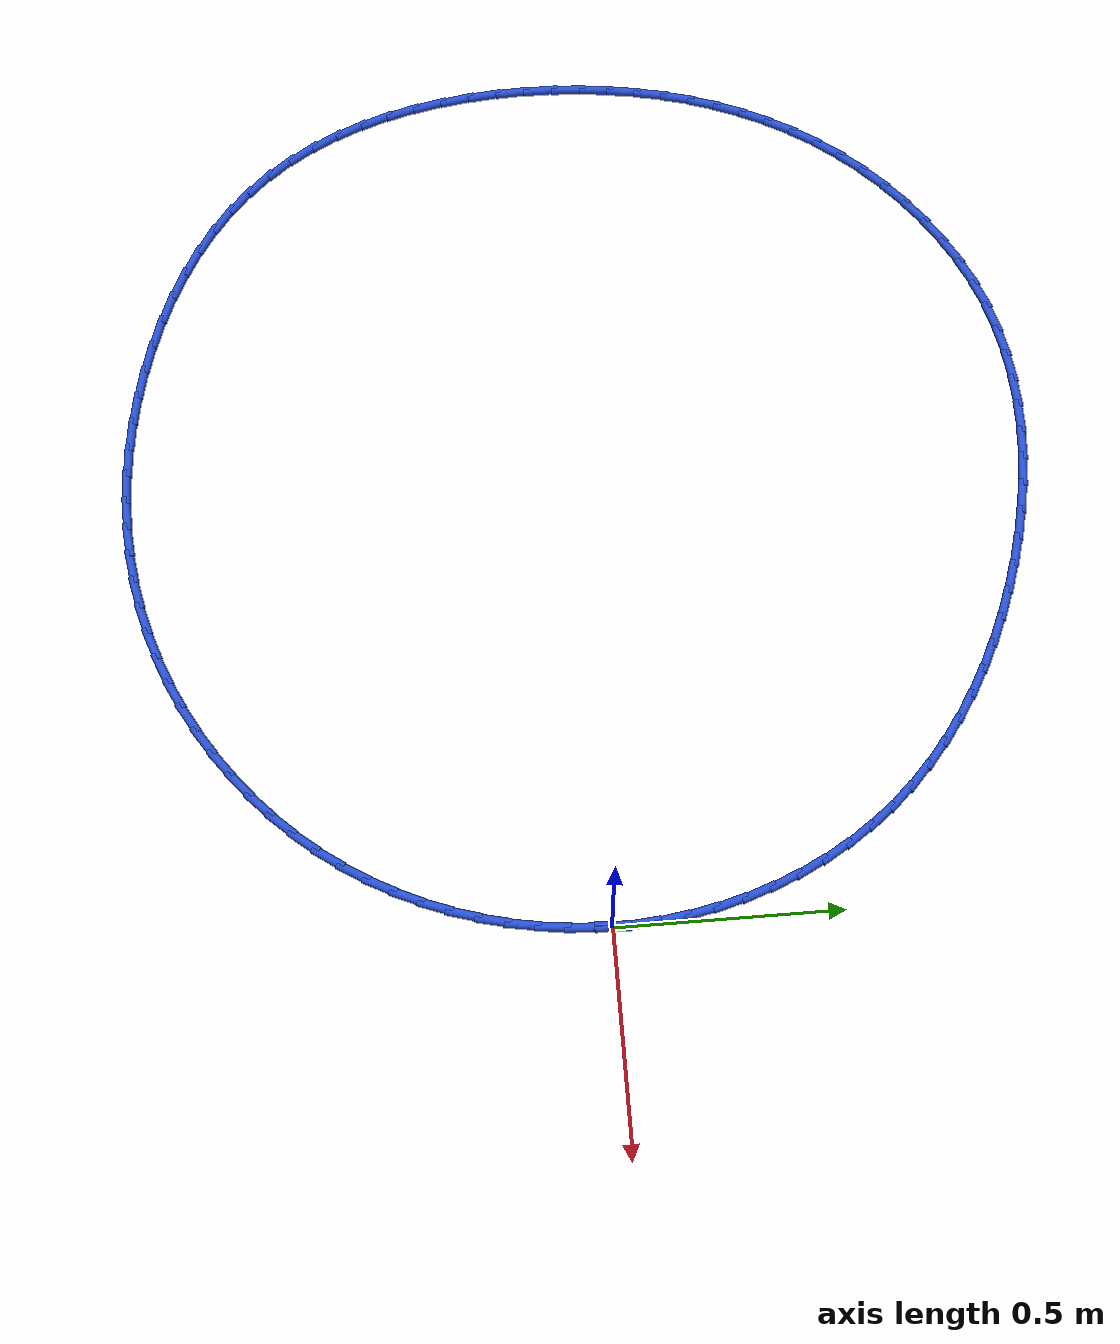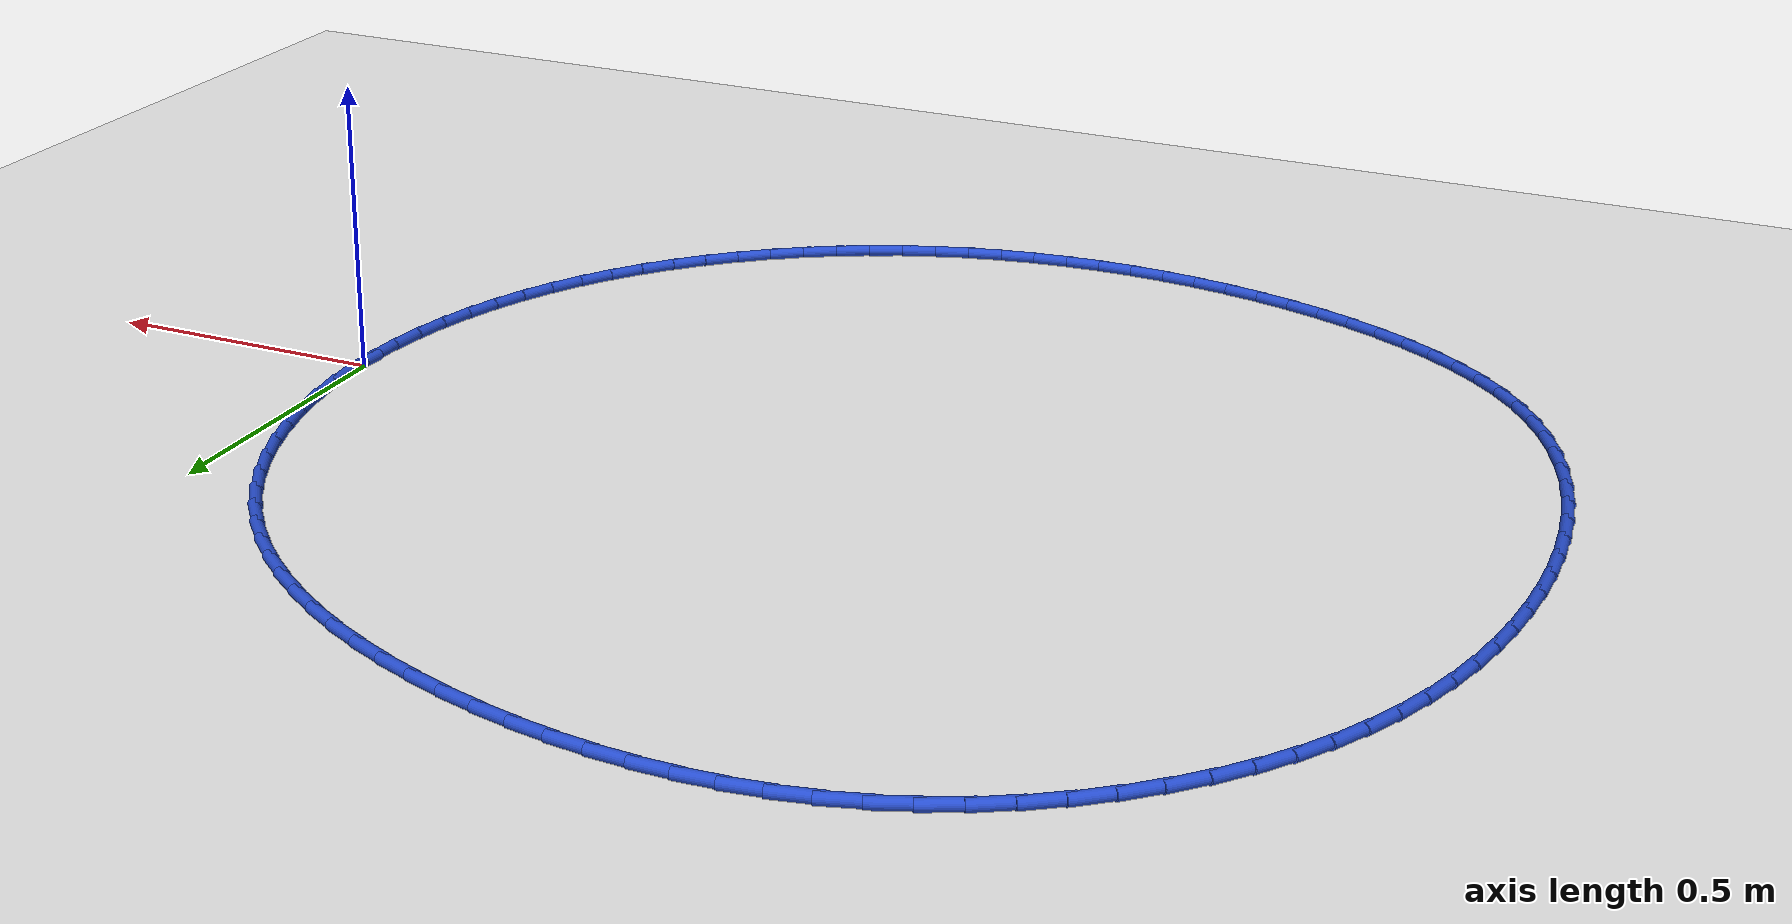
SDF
<sdf version="1.6">
 <world name="default">
  <light name="sun" type="directional">
   <pose>0 0 10 0 -0 0</pose>
   <diffuse>0.8 0.8 0.8 1</diffuse>
   <specular>0.2 0.2 0.2 1</specular>
   <attenuation>
    <range>1000</range>
    <constant>0.9</constant>
    <linear>0.01</linear>
    <quadratic>0.001</quadratic>
   </attenuation>
   <direction>-0.5 0.1 -0.9</direction>
  </light>
  <model name="ground_plane">
   <static>1</static>
   <link name="link">
    <collision name="collision">
     <geometry><plane><normal>0 0 1</normal><size>100 100</size></plane></geometry>
     <surface><friction><ode><mu>100</mu><mu2>50</mu2></ode></friction></surface>
    </collision>
    <visual name="visual">
     <cast_shadows>0</cast_shadows>
     <geometry><plane><normal>0 0 1</normal><size>100 100</size></plane></geometry>
     <material>
      <script><uri>file://media/materials/scripts/gazebo.material</uri><name>Gazebo/WhiteGlow</name></script>
     </material>
    </visual>
   </link>
  </model>
  <gravity>0 0 -9.8</gravity>
  <magnetic_field>6e-06 2.3e-05 -4.2e-05</magnetic_field>
  <atmosphere type="adiabatic"/>
  <physics name="default_physics" default="0" type="ode">
   <max_step_size>0.001</max_step_size>
   <real_time_factor>1</real_time_factor>
   <real_time_update_rate>1000</real_time_update_rate>
  </physics>
  <scene><ambient>0.4 0.4 0.4 1</ambient><background>0.7 0.7 0.7 1</background><shadows>1</shadows></scene>
  <spherical_coordinates>
   <surface_model>EARTH_WGS84</surface_model>
   <latitude_deg>0</latitude_deg>
   <longitude_deg>0</longitude_deg>
   <elevation>0</elevation>
   <heading_deg>0</heading_deg>
  </spherical_coordinates>
  <model name="line">
   <link name="link_0">
    <pose>-7.979727989493313e-17 -5.551115123125783e-17 0.01 0 1.57 -1.5408494146473548</pose>
    <collision name="collision">
     <geometry><cylinder><radius>0.01</radius><length>0.08</length></cylinder></geometry>
    </collision>
    <visual name="visual">
     <material>
      <script><name>Gazebo/Blue</name><uri>file://media/materials/scripts/gazebo.material</uri></script>
     </material>
     <geometry><cylinder><radius>0.01</radius><length>0.08</length></cylinder></geometry>
    </visual>
   </link>
   <link name="link_1">
    <pose>-0.0019232597727493138 0.06420310685774137 0.01 0 1.57 -1.4773075884383067</pose>
    <collision name="collision">
     <geometry><cylinder><radius>0.01</radius><length>0.08</length></cylinder></geometry>
    </collision>
    <visual name="visual">
     <material>
      <script><name>Gazebo/Blue</name><uri>file://media/materials/scripts/gazebo.material</uri></script>
     </material>
     <geometry><cylinder><radius>0.01</radius><length>0.08</length></cylinder></geometry>
    </visual>
   </link>
   <link name="link_2">
    <pose>-0.00792652469503419 0.1282296947416071 0.01 0 1.57 -1.4141613287091601</pose>
    <collision name="collision">
     <geometry><cylinder><radius>0.01</radius><length>0.08</length></cylinder></geometry>
    </collision>
    <visual name="visual">
     <material>
      <script><name>Gazebo/Blue</name><uri>file://media/materials/scripts/gazebo.material</uri></script>
     </material>
     <geometry><cylinder><radius>0.01</radius><length>0.08</length></cylinder></geometry>
    </visual>
   </link>
   <link name="link_3">
    <pose>-0.017959196712246224 0.19175629277417203 0.01 0 1.57 -1.3509506219460816</pose>
    <collision name="collision">
     <geometry><cylinder><radius>0.01</radius><length>0.08</length></cylinder></geometry>
    </collision>
    <visual name="visual">
     <material>
      <script><name>Gazebo/Blue</name><uri>file://media/materials/scripts/gazebo.material</uri></script>
     </material>
     <geometry><cylinder><radius>0.01</radius><length>0.08</length></cylinder></geometry>
    </visual>
   </link>
   <link name="link_4">
    <pose>-0.03197067776977697 0.25445943007801136 0.01 0 1.57 -1.2872148479106302</pose>
    <collision name="collision">
     <geometry><cylinder><radius>0.01</radius><length>0.08</length></cylinder></geometry>
    </collision>
    <visual name="visual">
     <material>
      <script><name>Gazebo/Blue</name><uri>file://media/materials/scripts/gazebo.material</uri></script>
     </material>
     <geometry><cylinder><radius>0.01</radius><length>0.08</length></cylinder></geometry>
    </visual>
   </link>
   <link name="link_5">
    <pose>-0.049910369813017906 0.3160156357756999 0.01 0 1.57 -1.2224969243278716</pose>
    <collision name="collision">
     <geometry><cylinder><radius>0.01</radius><length>0.08</length></cylinder></geometry>
    </collision>
    <visual name="visual">
     <material>
      <script><name>Gazebo/Blue</name><uri>file://media/materials/scripts/gazebo.material</uri></script>
     </material>
     <geometry><cylinder><radius>0.01</radius><length>0.08</length></cylinder></geometry>
    </visual>
   </link>
   <link name="link_6">
    <pose>-0.07172767478736058 0.37610143898981285 0.01 0 1.57 -1.1563488019617947</pose>
    <collision name="collision">
     <geometry><cylinder><radius>0.01</radius><length>0.08</length></cylinder></geometry>
    </collision>
    <visual name="visual">
     <material>
      <script><name>Gazebo/Blue</name><uri>file://media/materials/scripts/gazebo.material</uri></script>
     </material>
     <geometry><cylinder><radius>0.01</radius><length>0.08</length></cylinder></geometry>
    </visual>
   </link>
   <link name="link_7">
    <pose>-0.09737199463819655 0.43439336884292534 0.01 0 1.57 -1.088339555387657</pose>
    <collision name="collision">
     <geometry><cylinder><radius>0.01</radius><length>0.08</length></cylinder></geometry>
    </collision>
    <visual name="visual">
     <material>
      <script><name>Gazebo/Blue</name><uri>file://media/materials/scripts/gazebo.material</uri></script>
     </material>
     <geometry><cylinder><radius>0.01</radius><length>0.08</length></cylinder></geometry>
    </visual>
   </link>
   <link name="link_8">
    <pose>-0.12679273131091728 0.49056795445761203 0.01 0 1.57 -1.0180673129050635</pose>
    <collision name="collision">
     <geometry><cylinder><radius>0.01</radius><length>0.08</length></cylinder></geometry>
    </collision>
    <visual name="visual">
     <material>
      <script><name>Gazebo/Blue</name><uri>file://media/materials/scripts/gazebo.material</uri></script>
     </material>
     <geometry><cylinder><radius>0.01</radius><length>0.08</length></cylinder></geometry>
    </visual>
   </link>
   <link name="link_9">
    <pose>-0.1599392867509143 0.5443017249564484 0.01 0 1.57 -0.945179497578358</pose>
    <collision name="collision">
     <geometry><cylinder><radius>0.01</radius><length>0.08</length></cylinder></geometry>
    </collision>
    <visual name="visual">
     <material>
      <script><name>Gazebo/Blue</name><uri>file://media/materials/scripts/gazebo.material</uri></script>
     </material>
     <geometry><cylinder><radius>0.01</radius><length>0.08</length></cylinder></geometry>
    </visual>
   </link>
   <link name="link_10">
    <pose>-0.19676094613882456 0.5952714075460116 0.01 0 1.57 -0.8709187831548688</pose>
    <collision name="collision">
     <geometry><cylinder><radius>0.01</radius><length>0.08</length></cylinder></geometry>
    </collision>
    <visual name="visual">
     <material>
      <script><name>Gazebo/Blue</name><uri>file://media/materials/scripts/gazebo.material</uri></script>
     </material>
     <geometry><cylinder><radius>0.01</radius><length>0.08</length></cylinder></geometry>
    </visual>
   </link>
   <link name="link_11">
    <pose>-0.23715538018724672 0.6432412901051955 0.01 0 1.57 -0.7992280856382737</pose>
    <collision name="collision">
     <geometry><cylinder><radius>0.01</radius><length>0.08</length></cylinder></geometry>
    </collision>
    <visual name="visual">
     <material>
      <script><name>Gazebo/Blue</name><uri>file://media/materials/scripts/gazebo.material</uri></script>
     </material>
     <geometry><cylinder><radius>0.01</radius><length>0.08</length></cylinder></geometry>
    </visual>
   </link>
   <link name="link_12">
    <pose>-0.28088779448112405 0.688200379202763 0.01 0 1.57 -0.730919715108387</pose>
    <collision name="collision">
     <geometry><cylinder><radius>0.01</radius><length>0.08</length></cylinder></geometry>
    </collision>
    <visual name="visual">
     <material>
      <script><name>Gazebo/Blue</name><uri>file://media/materials/scripts/gazebo.material</uri></script>
     </material>
     <geometry><cylinder><radius>0.01</radius><length>0.08</length></cylinder></geometry>
    </visual>
   </link>
   <link name="link_13">
    <pose>-0.32770244028792117 0.7301732290784336 0.01 0 1.57 -0.6660616616987464</pose>
    <collision name="collision">
     <geometry><cylinder><radius>0.01</radius><length>0.08</length></cylinder></geometry>
    </collision>
    <visual name="visual">
     <material>
      <script><name>Gazebo/Blue</name><uri>file://media/materials/scripts/gazebo.material</uri></script>
     </material>
     <geometry><cylinder><radius>0.01</radius><length>0.08</length></cylinder></geometry>
    </visual>
   </link>
   <link name="link_14">
    <pose>-0.3773435688751024 0.7691843939719263 0.01 0 1.57 -0.6046035631862535</pose>
    <collision name="collision">
     <geometry><cylinder><radius>0.01</radius><length>0.08</length></cylinder></geometry>
    </collision>
    <visual name="visual">
     <material>
      <script><name>Gazebo/Blue</name><uri>file://media/materials/scripts/gazebo.material</uri></script>
     </material>
     <geometry><cylinder><radius>0.01</radius><length>0.08</length></cylinder></geometry>
    </visual>
   </link>
   <link name="link_15">
    <pose>-0.42955543151013204 0.8052584281229602 0.01 0 1.57 -0.5464033928702765</pose>
    <collision name="collision">
     <geometry><cylinder><radius>0.01</radius><length>0.08</length></cylinder></geometry>
    </collision>
    <visual name="visual">
     <material>
      <script><name>Gazebo/Blue</name><uri>file://media/materials/scripts/gazebo.material</uri></script>
     </material>
     <geometry><cylinder><radius>0.01</radius><length>0.08</length></cylinder></geometry>
    </visual>
   </link>
   <link name="link_16">
    <pose>-0.48408227946047466 0.8384198857712545 0.01 0 1.57 -0.4912523594731302</pose>
    <collision name="collision">
     <geometry><cylinder><radius>0.01</radius><length>0.08</length></cylinder></geometry>
    </collision>
    <visual name="visual">
     <material>
      <script><name>Gazebo/Blue</name><uri>file://media/materials/scripts/gazebo.material</uri></script>
     </material>
     <geometry><cylinder><radius>0.01</radius><length>0.08</length></cylinder></geometry>
    </visual>
   </link>
   <link name="link_17">
    <pose>-0.5406683639935945 0.8686933211565282 0.01 0 1.57 -0.43889602680177014</pose>
    <collision name="collision">
     <geometry><cylinder><radius>0.01</radius><length>0.08</length></cylinder></geometry>
    </collision>
    <visual name="visual">
     <material>
      <script><name>Gazebo/Blue</name><uri>file://media/materials/scripts/gazebo.material</uri></script>
     </material>
     <geometry><cylinder><radius>0.01</radius><length>0.08</length></cylinder></geometry>
    </visual>
   </link>
   <link name="link_18">
    <pose>-0.5990579363769561 0.8961032885185006 0.01 0 1.57 -0.3890508938154732</pose>
    <collision name="collision">
     <geometry><cylinder><radius>0.01</radius><length>0.08</length></cylinder></geometry>
    </collision>
    <visual name="visual">
     <material>
      <script><name>Gazebo/Blue</name><uri>file://media/materials/scripts/gazebo.material</uri></script>
     </material>
     <geometry><cylinder><radius>0.01</radius><length>0.08</length></cylinder></geometry>
    </visual>
   </link>
   <link name="link_19">
    <pose>-0.658995247878024 0.920674342096891 0.01 0 1.57 -0.34141648520035806</pose>
    <collision name="collision">
     <geometry><cylinder><radius>0.01</radius><length>0.08</length></cylinder></geometry>
    </collision>
    <visual name="visual">
     <material>
      <script><name>Gazebo/Blue</name><uri>file://media/materials/scripts/gazebo.material</uri></script>
     </material>
     <geometry><cylinder><radius>0.01</radius><length>0.08</length></cylinder></geometry>
    </visual>
   </link>
   <link name="link_20">
    <pose>-0.7202245497642625 0.942431036131418 0.01 0 1.57 -0.29567891459982665</pose>
    <collision name="collision">
     <geometry><cylinder><radius>0.01</radius><length>0.08</length></cylinder></geometry>
    </collision>
    <visual name="visual">
     <material>
      <script><name>Gazebo/Blue</name><uri>file://media/materials/scripts/gazebo.material</uri></script>
     </material>
     <geometry><cylinder><radius>0.01</radius><length>0.08</length></cylinder></geometry>
    </visual>
   </link>
   <link name="link_21">
    <pose>-0.7824901200308716 0.9613976253988844 0.01 0 1.57 -0.25045913829313826</pose>
    <collision name="collision">
     <geometry><cylinder><radius>0.01</radius><length>0.08</length></cylinder></geometry>
    </collision>
    <visual name="visual">
     <material>
      <script><name>Gazebo/Blue</name><uri>file://media/materials/scripts/gazebo.material</uri></script>
     </material>
     <geometry><cylinder><radius>0.01</radius><length>0.08</length></cylinder></geometry>
    </visual>
   </link>
   <link name="link_22">
    <pose>-0.8455424831567988 0.9775283778186529 0.01 0 1.57 -0.20296663626624475</pose>
    <collision name="collision">
     <geometry><cylinder><radius>0.01</radius><length>0.08</length></cylinder></geometry>
    </collision>
    <visual name="visual">
     <material>
      <script><name>Gazebo/Blue</name><uri>file://media/materials/scripts/gazebo.material</uri></script>
     </material>
     <geometry><cylinder><radius>0.01</radius><length>0.08</length></cylinder></geometry>
    </visual>
   </link>
   <link name="link_23">
    <pose>-0.9091463966711516 0.990618091359803 0.01 0 1.57 -0.1524535179724318</pose>
    <collision name="collision">
     <geometry><cylinder><radius>0.01</radius><length>0.08</length></cylinder></geometry>
    </collision>
    <visual name="visual">
     <material>
      <script><name>Gazebo/Blue</name><uri>file://media/materials/scripts/gazebo.material</uri></script>
     </material>
     <geometry><cylinder><radius>0.01</radius><length>0.08</length></cylinder></geometry>
    </visual>
   </link>
   <link name="link_24">
    <pose>-0.9730685907053103 1.000439462559691 0.01 0 1.57 -0.09850845296506963</pose>
    <collision name="collision">
     <geometry><cylinder><radius>0.01</radius><length>0.08</length></cylinder></geometry>
    </collision>
    <visual name="visual">
     <material>
      <script><name>Gazebo/Blue</name><uri>file://media/materials/scripts/gazebo.material</uri></script>
     </material>
     <geometry><cylinder><radius>0.01</radius><length>0.08</length></cylinder></geometry>
    </visual>
   </link>
   <link name="link_25">
    <pose>-1.0370757953906558 1.0067651879556732 0.01 0 1.57 -0.04073566004027837</pose>
    <collision name="collision">
     <geometry><cylinder><radius>0.01</radius><length>0.08</length></cylinder></geometry>
    </collision>
    <visual name="visual">
     <material>
      <script><name>Gazebo/Blue</name><uri>file://media/materials/scripts/gazebo.material</uri></script>
     </material>
     <geometry><cylinder><radius>0.01</radius><length>0.08</length></cylinder></geometry>
    </visual>
   </link>
   <link name="link_26">
    <pose>-1.100934740858568 1.0093679640851059 0.01 0 1.57 0.021224465870079895</pose>
    <collision name="collision">
     <geometry><cylinder><radius>0.01</radius><length>0.08</length></cylinder></geometry>
    </collision>
    <visual name="visual">
     <material>
      <script><name>Gazebo/Blue</name><uri>file://media/materials/scripts/gazebo.material</uri></script>
     </material>
     <geometry><cylinder><radius>0.01</radius><length>0.08</length></cylinder></geometry>
    </visual>
   </link>
   <link name="link_27">
    <pose>-1.1644121572404278 1.0080204874853453 0.01 0 1.57 0.0876653261071389</pose>
    <collision name="collision">
     <geometry><cylinder><radius>0.01</radius><length>0.08</length></cylinder></geometry>
    </collision>
    <visual name="visual">
     <material>
      <script><name>Gazebo/Blue</name><uri>file://media/materials/scripts/gazebo.material</uri></script>
     </material>
     <geometry><cylinder><radius>0.01</radius><length>0.08</length></cylinder></geometry>
    </visual>
   </link>
   <link name="link_28">
    <pose>-1.2272747746676147 1.002495454693748 0.01 0 1.57 0.1587741972995921</pose>
    <collision name="collision">
     <geometry><cylinder><radius>0.01</radius><length>0.08</length></cylinder></geometry>
    </collision>
    <visual name="visual">
     <material>
      <script><name>Gazebo/Blue</name><uri>file://media/materials/scripts/gazebo.material</uri></script>
     </material>
     <geometry><cylinder><radius>0.01</radius><length>0.08</length></cylinder></geometry>
    </visual>
   </link>
   <link name="link_29">
    <pose>-1.2892893232715097 0.9925655622476702 0.01 0 1.57 0.23458399019818868</pose>
    <collision name="collision">
     <geometry><cylinder><radius>0.01</radius><length>0.08</length></cylinder></geometry>
    </collision>
    <visual name="visual">
     <material>
      <script><name>Gazebo/Blue</name><uri>file://media/materials/scripts/gazebo.material</uri></script>
     </material>
     <geometry><cylinder><radius>0.01</radius><length>0.08</length></cylinder></geometry>
    </visual>
   </link>
   <link name="link_30">
    <pose>-1.3502225331834932 0.9780035066844681 0.01 0 1.57 0.3149215701187062</pose>
    <collision name="collision">
     <geometry><cylinder><radius>0.01</radius><length>0.08</length></cylinder></geometry>
    </collision>
    <visual name="visual">
     <material>
      <script><name>Gazebo/Blue</name><uri>file://media/materials/scripts/gazebo.material</uri></script>
     </material>
     <geometry><cylinder><radius>0.01</radius><length>0.08</length></cylinder></geometry>
    </visual>
   </link>
   <link name="link_31">
    <pose>-1.4098411341714976 0.9585819909354684 0.01 0 1.57 0.3978024775382818</pose>
    <collision name="collision">
     <geometry><cylinder><radius>0.01</radius><length>0.08</length></cylinder></geometry>
    </collision>
    <visual name="visual">
     <material>
      <script><name>Gazebo/Blue</name><uri>file://media/materials/scripts/gazebo.material</uri></script>
     </material>
     <geometry><cylinder><radius>0.01</radius><length>0.08</length></cylinder></geometry>
    </visual>
   </link>
   <link name="link_32">
    <pose>-1.467905645482746 0.9341829766789104 0.01 0 1.57 0.4775281320620063</pose>
    <collision name="collision">
     <geometry><cylinder><radius>0.01</radius><length>0.08</length></cylinder></geometry>
    </collision>
    <visual name="visual">
     <material>
      <script><name>Gazebo/Blue</name><uri>file://media/materials/scripts/gazebo.material</uri></script>
     </material>
     <geometry><cylinder><radius>0.01</radius><length>0.08</length></cylinder></geometry>
    </visual>
   </link>
   <link name="link_33">
    <pose>-1.5241545743655254 0.9050756722561337 0.01 0 1.57 0.5533552154858935</pose>
    <collision name="collision">
     <geometry><cylinder><radius>0.01</radius><length>0.08</length></cylinder></geometry>
    </collision>
    <visual name="visual">
     <material>
      <script><name>Gazebo/Blue</name><uri>file://media/materials/scripts/gazebo.material</uri></script>
     </material>
     <geometry><cylinder><radius>0.01</radius><length>0.08</length></cylinder></geometry>
    </visual>
   </link>
   <link name="link_34">
    <pose>-1.5783215536008102 0.871615040201326 0.01 0 1.57 0.6259212849780386</pose>
    <collision name="collision">
     <geometry><cylinder><radius>0.01</radius><length>0.08</length></cylinder></geometry>
    </collision>
    <visual name="visual">
     <material>
      <script><name>Gazebo/Blue</name><uri>file://media/materials/scripts/gazebo.material</uri></script>
     </material>
     <geometry><cylinder><radius>0.01</radius><length>0.08</length></cylinder></geometry>
    </visual>
   </link>
   <link name="link_35">
    <pose>-1.6301402159695737 0.8341560430486737 0.01 0 1.57 0.6959255420589754</pose>
    <collision name="collision">
     <geometry><cylinder><radius>0.01</radius><length>0.08</length></cylinder></geometry>
    </collision>
    <visual name="visual">
     <material>
      <script><name>Gazebo/Blue</name><uri>file://media/materials/scripts/gazebo.material</uri></script>
     </material>
     <geometry><cylinder><radius>0.01</radius><length>0.08</length></cylinder></geometry>
    </visual>
   </link>
   <link name="link_36">
    <pose>-1.679344194252791 0.7930536433323654 0.01 0 1.57 0.7641026618694848</pose>
    <collision name="collision">
     <geometry><cylinder><radius>0.01</radius><length>0.08</length></cylinder></geometry>
    </collision>
    <visual name="visual">
     <material>
      <script><name>Gazebo/Blue</name><uri>file://media/materials/scripts/gazebo.material</uri></script>
     </material>
     <geometry><cylinder><radius>0.01</radius><length>0.08</length></cylinder></geometry>
    </visual>
   </link>
   <link name="link_37">
    <pose>-1.725667121231434 0.7486628035865868 0.01 0 1.57 0.8312093682918493</pose>
    <collision name="collision">
     <geometry><cylinder><radius>0.01</radius><length>0.08</length></cylinder></geometry>
    </collision>
    <visual name="visual">
     <material>
      <script><name>Gazebo/Blue</name><uri>file://media/materials/scripts/gazebo.material</uri></script>
     </material>
     <geometry><cylinder><radius>0.01</radius><length>0.08</length></cylinder></geometry>
    </visual>
   </link>
   <link name="link_38">
    <pose>-1.7688426296864783 0.7013384863455262 0.01 0 1.57 0.8980201196091098</pose>
    <collision name="collision">
     <geometry><cylinder><radius>0.01</radius><length>0.08</length></cylinder></geometry>
    </collision>
    <visual name="visual">
     <material>
      <script><name>Gazebo/Blue</name><uri>file://media/materials/scripts/gazebo.material</uri></script>
     </material>
     <geometry><cylinder><radius>0.01</radius><length>0.08</length></cylinder></geometry>
    </visual>
   </link>
   <link name="link_39">
    <pose>-1.8086043523988964 0.6514356541433703 0.01 0 1.57 0.9653101531117739</pose>
    <collision name="collision">
     <geometry><cylinder><radius>0.01</radius><length>0.08</length></cylinder></geometry>
    </collision>
    <visual name="visual">
     <material>
      <script><name>Gazebo/Blue</name><uri>file://media/materials/scripts/gazebo.material</uri></script>
     </material>
     <geometry><cylinder><radius>0.01</radius><length>0.08</length></cylinder></geometry>
    </visual>
   </link>
   <link name="link_40">
    <pose>-1.8446882904525725 0.5993078957045892 0.01 0 1.57 1.0326348399972154</pose>
    <collision name="collision">
     <geometry><cylinder><radius>0.01</radius><length>0.08</length></cylinder></geometry>
    </collision>
    <visual name="visual">
     <material>
      <script><name>Gazebo/Blue</name><uri>file://media/materials/scripts/gazebo.material</uri></script>
     </material>
     <geometry><cylinder><radius>0.01</radius><length>0.08</length></cylinder></geometry>
    </visual>
   </link>
   <link name="link_41">
    <pose>-1.8769707191460905 0.5452274292167621 0.01 0 1.57 1.098166346032039</pose>
    <collision name="collision">
     <geometry><cylinder><radius>0.01</radius><length>0.08</length></cylinder></geometry>
    </collision>
    <visual name="visual">
     <material>
      <script><name>Gazebo/Blue</name><uri>file://media/materials/scripts/gazebo.material</uri></script>
     </material>
     <geometry><cylinder><radius>0.01</radius><length>0.08</length></cylinder></geometry>
    </visual>
   </link>
   <link name="link_42">
    <pose>-1.9055442964689044 0.48934095317899795 0.01 0 1.57 1.1613807412274975</pose>
    <collision name="collision">
     <geometry><cylinder><radius>0.01</radius><length>0.08</length></cylinder></geometry>
    </collision>
    <visual name="visual">
     <material>
      <script><name>Gazebo/Blue</name><uri>file://media/materials/scripts/gazebo.material</uri></script>
     </material>
     <geometry><cylinder><radius>0.01</radius><length>0.08</length></cylinder></geometry>
    </visual>
   </link>
   <link name="link_43">
    <pose>-1.9305201726802306 0.43178443905891184 0.01 0 1.57 1.2219977997259</pose>
    <collision name="collision">
     <geometry><cylinder><radius>0.01</radius><length>0.08</length></cylinder></geometry>
    </collision>
    <visual name="visual">
     <material>
      <script><name>Gazebo/Blue</name><uri>file://media/materials/scripts/gazebo.material</uri></script>
     </material>
     <geometry><cylinder><radius>0.01</radius><length>0.08</length></cylinder></geometry>
    </visual>
   </link>
   <link name="link_44">
    <pose>-1.952009498039283 0.3726938583241189 0.01 0 1.57 1.2798352328859954</pose>
    <collision name="collision">
     <geometry><cylinder><radius>0.01</radius><length>0.08</length></cylinder></geometry>
    </collision>
    <visual name="visual">
     <material>
      <script><name>Gazebo/Blue</name><uri>file://media/materials/scripts/gazebo.material</uri></script>
     </material>
     <geometry><cylinder><radius>0.01</radius><length>0.08</length></cylinder></geometry>
    </visual>
   </link>
   <link name="link_45">
    <pose>-1.9701234228052773 0.31220518244223466 0.01 0 1.57 1.3347999541859474</pose>
    <collision name="collision">
     <geometry><cylinder><radius>0.01</radius><length>0.08</length></cylinder></geometry>
    </collision>
    <visual name="visual">
     <material>
      <script><name>Gazebo/Blue</name><uri>file://media/materials/scripts/gazebo.material</uri></script>
     </material>
     <geometry><cylinder><radius>0.01</radius><length>0.08</length></cylinder></geometry>
    </visual>
   </link>
   <link name="link_46">
    <pose>-1.98497309723743 0.2504543828808746 0.01 0 1.57 1.386875362385069</pose>
    <collision name="collision">
     <geometry><cylinder><radius>0.01</radius><length>0.08</length></cylinder></geometry>
    </collision>
    <visual name="visual">
     <material>
      <script><name>Gazebo/Blue</name><uri>file://media/materials/scripts/gazebo.material</uri></script>
     </material>
     <geometry><cylinder><radius>0.01</radius><length>0.08</length></cylinder></geometry>
    </visual>
   </link>
   <link name="link_47">
    <pose>-1.9966696715949546 0.18757743110765376 0.01 0 1.57 1.436106923886268</pose>
    <collision name="collision">
     <geometry><cylinder><radius>0.01</radius><length>0.08</length></cylinder></geometry>
    </collision>
    <visual name="visual">
     <material>
      <script><name>Gazebo/Blue</name><uri>file://media/materials/scripts/gazebo.material</uri></script>
     </material>
     <geometry><cylinder><radius>0.01</radius><length>0.08</length></cylinder></geometry>
    </visual>
   </link>
   <link name="link_48">
    <pose>-2.0053242961370676 0.1237102985901881 0.01 0 1.57 1.482587832864527</pose>
    <collision name="collision">
     <geometry><cylinder><radius>0.01</radius><length>0.08</length></cylinder></geometry>
    </collision>
    <visual name="visual">
     <material>
      <script><name>Gazebo/Blue</name><uri>file://media/materials/scripts/gazebo.material</uri></script>
     </material>
     <geometry><cylinder><radius>0.01</radius><length>0.08</length></cylinder></geometry>
    </visual>
   </link>
   <link name="link_49">
    <pose>-2.011048121122984 0.05898895679609199 0.01 0 1.57 1.5269410254900386</pose>
    <collision name="collision">
     <geometry><cylinder><radius>0.01</radius><length>0.08</length></cylinder></geometry>
    </collision>
    <visual name="visual">
     <material>
      <script><name>Gazebo/Blue</name><uri>file://media/materials/scripts/gazebo.material</uri></script>
     </material>
     <geometry><cylinder><radius>0.01</radius><length>0.08</length></cylinder></geometry>
    </visual>
   </link>
   <link name="link_50">
    <pose>-2.013918491471238 -0.006420009611382629 0.01 0 1.57 -1.5697344655425363</pose>
    <collision name="collision">
     <geometry><cylinder><radius>0.01</radius><length>0.08</length></cylinder></geometry>
    </collision>
    <visual name="visual">
     <material>
      <script><name>Gazebo/Blue</name><uri>file://media/materials/scripts/gazebo.material</uri></script>
     </material>
     <geometry><cylinder><radius>0.01</radius><length>0.08</length></cylinder></geometry>
    </visual>
   </link>
   <link name="link_51">
    <pose>-2.0138486407341447 -0.07220140118625813 0.01 0 1.57 -1.5230078893681769</pose>
    <collision name="collision">
     <geometry><cylinder><radius>0.01</radius><length>0.08</length></cylinder></geometry>
    </collision>
    <visual name="visual">
     <material>
      <script><name>Gazebo/Blue</name><uri>file://media/materials/scripts/gazebo.material</uri></script>
     </material>
     <geometry><cylinder><radius>0.01</radius><length>0.08</length></cylinder></geometry>
    </visual>
   </link>
   <link name="link_52">
    <pose>-2.0107020725255977 -0.13799498440500566 0.01 0 1.57 -1.4739236087089247</pose>
    <collision name="collision">
     <geometry><cylinder><radius>0.01</radius><length>0.08</length></cylinder></geometry>
    </collision>
    <visual name="visual">
     <material>
      <script><name>Gazebo/Blue</name><uri>file://media/materials/scripts/gazebo.material</uri></script>
     </material>
     <geometry><cylinder><radius>0.01</radius><length>0.08</length></cylinder></geometry>
    </visual>
   </link>
   <link name="link_53">
    <pose>-2.0043422794402277 -0.20344051576535394 0.01 0 1.57 -1.4219223932918303</pose>
    <collision name="collision">
     <geometry><cylinder><radius>0.01</radius><length>0.08</length></cylinder></geometry>
    </collision>
    <visual name="visual">
     <material>
      <script><name>Gazebo/Blue</name><uri>file://media/materials/scripts/gazebo.material</uri></script>
     </material>
     <geometry><cylinder><radius>0.01</radius><length>0.08</length></cylinder></geometry>
    </visual>
   </link>
   <link name="link_54">
    <pose>-1.9946327540726694 -0.2681777517650316 0.01 0 1.57 -1.3664329923961753</pose>
    <collision name="collision">
     <geometry><cylinder><radius>0.01</radius><length>0.08</length></cylinder></geometry>
    </collision>
    <visual name="visual">
     <material>
      <script><name>Gazebo/Blue</name><uri>file://media/materials/scripts/gazebo.material</uri></script>
     </material>
     <geometry><cylinder><radius>0.01</radius><length>0.08</length></cylinder></geometry>
    </visual>
   </link>
   <link name="link_55">
    <pose>-1.9814369890175536 -0.33184644890176707 0.01 0 1.57 -1.3068788174038595</pose>
    <collision name="collision">
     <geometry><cylinder><radius>0.01</radius><length>0.08</length></cylinder></geometry>
    </collision>
    <visual name="visual">
     <material>
      <script><name>Gazebo/Blue</name><uri>file://media/materials/scripts/gazebo.material</uri></script>
     </material>
     <geometry><cylinder><radius>0.01</radius><length>0.08</length></cylinder></geometry>
    </visual>
   </link>
   <link name="link_56">
    <pose>-1.9646184768695139 -0.3940863636732891 0.01 0 1.57 -1.2426951011632767</pose>
    <collision name="collision">
     <geometry><cylinder><radius>0.01</radius><length>0.08</length></cylinder></geometry>
    </collision>
    <visual name="visual">
     <material>
      <script><name>Gazebo/Blue</name><uri>file://media/materials/scripts/gazebo.material</uri></script>
     </material>
     <geometry><cylinder><radius>0.01</radius><length>0.08</length></cylinder></geometry>
    </visual>
   </link>
   <link name="link_57">
    <pose>-1.9440407102231816 -0.45453725257732625 0.01 0 1.57 -1.1733601048567164</pose>
    <collision name="collision">
     <geometry><cylinder><radius>0.01</radius><length>0.08</length></cylinder></geometry>
    </collision>
    <visual name="visual">
     <material>
      <script><name>Gazebo/Blue</name><uri>file://media/materials/scripts/gazebo.material</uri></script>
     </material>
     <geometry><cylinder><radius>0.01</radius><length>0.08</length></cylinder></geometry>
    </visual>
   </link>
   <link name="link_58">
    <pose>-1.9195671816731896 -0.5128388721116065 0.01 0 1.57 -1.0984438983460747</pose>
    <collision name="collision">
     <geometry><cylinder><radius>0.01</radius><length>0.08</length></cylinder></geometry>
    </collision>
    <visual name="visual">
     <material>
      <script><name>Gazebo/Blue</name><uri>file://media/materials/scripts/gazebo.material</uri></script>
     </material>
     <geometry><cylinder><radius>0.01</radius><length>0.08</length></cylinder></geometry>
    </visual>
   </link>
   <link name="link_59">
    <pose>-1.8910613838141703 -0.5686309787738599 0.01 0 1.57 -1.017676540202341</pose>
    <collision name="collision">
     <geometry><cylinder><radius>0.01</radius><length>0.08</length></cylinder></geometry>
    </collision>
    <visual name="visual">
     <material>
      <script><name>Gazebo/Blue</name><uri>file://media/materials/scripts/gazebo.material</uri></script>
     </material>
     <geometry><cylinder><radius>0.01</radius><length>0.08</length></cylinder></geometry>
    </visual>
   </link>
   <link name="link_60">
    <pose>-1.858386809240756 -0.6215533290618143 0.01 0 1.57 -0.9310329561809974</pose>
    <collision name="collision">
     <geometry><cylinder><radius>0.01</radius><length>0.08</length></cylinder></geometry>
    </collision>
    <visual name="visual">
     <material>
      <script><name>Gazebo/Blue</name><uri>file://media/materials/scripts/gazebo.material</uri></script>
     </material>
     <geometry><cylinder><radius>0.01</radius><length>0.08</length></cylinder></geometry>
    </visual>
   </link>
   <link name="link_61">
    <pose>-1.8214069505475794 -0.6712456794731982 0.01 0 1.57 -0.8396879677701544</pose>
    <collision name="collision">
     <geometry><cylinder><radius>0.01</radius><length>0.08</length></cylinder></geometry>
    </collision>
    <visual name="visual">
     <material>
      <script><name>Gazebo/Blue</name><uri>file://media/materials/scripts/gazebo.material</uri></script>
     </material>
     <geometry><cylinder><radius>0.01</radius><length>0.08</length></cylinder></geometry>
    </visual>
   </link>
   <link name="link_62">
    <pose>-1.7800291588770885 -0.7173791115083646 0.01 0 1.57 -0.7512387908153706</pose>
    <collision name="collision">
     <geometry><cylinder><radius>0.01</radius><length>0.08</length></cylinder></geometry>
    </collision>
    <visual name="visual">
     <material>
      <script><name>Gazebo/Blue</name><uri>file://media/materials/scripts/gazebo.material</uri></script>
     </material>
     <geometry><cylinder><radius>0.01</radius><length>0.08</length></cylinder></geometry>
    </visual>
   </link>
   <link name="link_63">
    <pose>-1.73451966051776 -0.7598810253432956 0.01 0 1.57 -0.6693088651236893</pose>
    <collision name="collision">
     <geometry><cylinder><radius>0.01</radius><length>0.08</length></cylinder></geometry>
    </collision>
    <visual name="visual">
     <material>
      <script><name>Gazebo/Blue</name><uri>file://media/materials/scripts/gazebo.material</uri></script>
     </material>
     <geometry><cylinder><radius>0.01</radius><length>0.08</length></cylinder></geometry>
    </visual>
   </link>
   <link name="link_64">
    <pose>-1.6853202040608637 -0.798804184096191 0.01 0 1.57 -0.5937058304665471</pose>
    <collision name="collision">
     <geometry><cylinder><radius>0.01</radius><length>0.08</length></cylinder></geometry>
    </collision>
    <visual name="visual">
     <material>
      <script><name>Gazebo/Blue</name><uri>file://media/materials/scripts/gazebo.material</uri></script>
     </material>
     <geometry><cylinder><radius>0.01</radius><length>0.08</length></cylinder></geometry>
    </visual>
   </link>
   <link name="link_65">
    <pose>-1.6328737339210564 -0.8342022049757905 0.01 0 1.57 -0.5239731672013596</pose>
    <collision name="collision">
     <geometry><cylinder><radius>0.01</radius><length>0.08</length></cylinder></geometry>
    </collision>
    <visual name="visual">
     <material>
      <script><name>Gazebo/Blue</name><uri>file://media/materials/scripts/gazebo.material</uri></script>
     </material>
     <geometry><cylinder><radius>0.01</radius><length>0.08</length></cylinder></geometry>
    </visual>
   </link>
   <link name="link_66">
    <pose>-1.5776231945129937 -0.8661287051908324 0.01 0 1.57 -0.45951166389075415</pose>
    <collision name="collision">
     <geometry><cylinder><radius>0.01</radius><length>0.08</length></cylinder></geometry>
    </collision>
    <visual name="visual">
     <material>
      <script><name>Gazebo/Blue</name><uri>file://media/materials/scripts/gazebo.material</uri></script>
     </material>
     <geometry><cylinder><radius>0.01</radius><length>0.08</length></cylinder></geometry>
    </visual>
   </link>
   <link name="link_67">
    <pose>-1.5200115302513322 -0.8946373019500556 0.01 0 1.57 -0.3996507426128049</pose>
    <collision name="collision">
     <geometry><cylinder><radius>0.01</radius><length>0.08</length></cylinder></geometry>
    </collision>
    <visual name="visual">
     <material>
      <script><name>Gazebo/Blue</name><uri>file://media/materials/scripts/gazebo.material</uri></script>
     </material>
     <geometry><cylinder><radius>0.01</radius><length>0.08</length></cylinder></geometry>
    </visual>
   </link>
   <link name="link_68">
    <pose>-1.4604816855507292 -0.9197816124621997 0.01 0 1.57 -0.3436941548596234</pose>
    <collision name="collision">
     <geometry><cylinder><radius>0.01</radius><length>0.08</length></cylinder></geometry>
    </collision>
    <visual name="visual">
     <material>
      <script><name>Gazebo/Blue</name><uri>file://media/materials/scripts/gazebo.material</uri></script>
     </material>
     <geometry><cylinder><radius>0.01</radius><length>0.08</length></cylinder></geometry>
    </visual>
   </link>
   <link name="link_69">
    <pose>-1.39947660482584 -0.9416152539360031 0.01 0 1.57 -0.2909387111192253</pose>
    <collision name="collision">
     <geometry><cylinder><radius>0.01</radius><length>0.08</length></cylinder></geometry>
    </collision>
    <visual name="visual">
     <material>
      <script><name>Gazebo/Blue</name><uri>file://media/materials/scripts/gazebo.material</uri></script>
     </material>
     <geometry><cylinder><radius>0.01</radius><length>0.08</length></cylinder></geometry>
    </visual>
   </link>
   <link name="link_70">
    <pose>-1.33743868904169 -0.960191600627516 0.01 0 1.57 -0.23984110750078788</pose>
    <collision name="collision">
     <geometry><cylinder><radius>0.01</radius><length>0.08</length></cylinder></geometry>
    </collision>
    <visual name="visual">
     <material>
      <script><name>Gazebo/Blue</name><uri>file://media/materials/scripts/gazebo.material</uri></script>
     </material>
     <geometry><cylinder><radius>0.01</radius><length>0.08</length></cylinder></geometry>
    </visual>
   </link>
   <link name="link_71">
    <pose>-1.274728255304963 -0.9755273306705934 0.01 0 1.57 -0.18821694801370642</pose>
    <collision name="collision">
     <geometry><cylinder><radius>0.01</radius><length>0.08</length></cylinder></geometry>
    </collision>
    <visual name="visual">
     <material>
      <script><name>Gazebo/Blue</name><uri>file://media/materials/scripts/gazebo.material</uri></script>
     </material>
     <geometry><cylinder><radius>0.01</radius><length>0.08</length></cylinder></geometry>
    </visual>
   </link>
   <link name="link_72">
    <pose>-1.211536564903683 -0.987563544696953 0.01 0 1.57 -0.13566757564333137</pose>
    <collision name="collision">
     <geometry><cylinder><radius>0.01</radius><length>0.08</length></cylinder></geometry>
    </collision>
    <visual name="visual">
     <material>
      <script><name>Gazebo/Blue</name><uri>file://media/materials/scripts/gazebo.material</uri></script>
     </material>
     <geometry><cylinder><radius>0.01</radius><length>0.08</length></cylinder></geometry>
    </visual>
   </link>
   <link name="link_73">
    <pose>-1.1480340395433966 -0.9962320268675635 0.01 0 1.57 -0.08203254212190446</pose>
    <collision name="collision">
     <geometry><cylinder><radius>0.01</radius><length>0.08</length></cylinder></geometry>
    </collision>
    <visual name="visual">
     <material>
      <script><name>Gazebo/Blue</name><uri>file://media/materials/scripts/gazebo.material</uri></script>
     </material>
     <geometry><cylinder><radius>0.01</radius><length>0.08</length></cylinder></geometry>
    </visual>
   </link>
   <link name="link_74">
    <pose>-1.084391100929651 -1.0014645613433946 0.01 0 1.57 -0.027163437096053636</pose>
    <collision name="collision">
     <geometry><cylinder><radius>0.01</radius><length>0.08</length></cylinder></geometry>
    </collision>
    <visual name="visual">
     <material>
      <script><name>Gazebo/Blue</name><uri>file://media/materials/scripts/gazebo.material</uri></script>
     </material>
     <geometry><cylinder><radius>0.01</radius><length>0.08</length></cylinder></geometry>
    </visual>
   </link>
   <link name="link_75">
    <pose>-1.020778170767993 -1.0031929322854152 0.01 0 1.57 0.029071380508503195</pose>
    <collision name="collision">
     <geometry><cylinder><radius>0.01</radius><length>0.08</length></cylinder></geometry>
    </collision>
    <visual name="visual">
     <material>
      <script><name>Gazebo/Blue</name><uri>file://media/materials/scripts/gazebo.material</uri></script>
     </material>
     <geometry><cylinder><radius>0.01</radius><length>0.08</length></cylinder></geometry>
    </visual>
   </link>
   <link name="link_76">
    <pose>-0.9573656707639693 -1.0013489238545947 0.01 0 1.57 0.086781179622373</pose>
    <collision name="collision">
     <geometry><cylinder><radius>0.01</radius><length>0.08</length></cylinder></geometry>
    </collision>
    <visual name="visual">
     <material>
      <script><name>Gazebo/Blue</name><uri>file://media/materials/scripts/gazebo.material</uri></script>
     </material>
     <geometry><cylinder><radius>0.01</radius><length>0.08</length></cylinder></geometry>
    </visual>
   </link>
   <link name="link_77">
    <pose>-0.8943240226231268 -0.9958643202119029 0.01 0 1.57 0.14604644813594608</pose>
    <collision name="collision">
     <geometry><cylinder><radius>0.01</radius><length>0.08</length></cylinder></geometry>
    </collision>
    <visual name="visual">
     <material>
      <script><name>Gazebo/Blue</name><uri>file://media/materials/scripts/gazebo.material</uri></script>
     </material>
     <geometry><cylinder><radius>0.01</radius><length>0.08</length></cylinder></geometry>
    </visual>
   </link>
   <link name="link_78">
    <pose>-0.8318236480510124 -0.9866709055183082 0.01 0 1.57 0.2069118830978835</pose>
    <collision name="collision">
     <geometry><cylinder><radius>0.01</radius><length>0.08</length></cylinder></geometry>
    </collision>
    <visual name="visual">
     <material>
      <script><name>Gazebo/Blue</name><uri>file://media/materials/scripts/gazebo.material</uri></script>
     </material>
     <geometry><cylinder><radius>0.01</radius><length>0.08</length></cylinder></geometry>
    </visual>
   </link>
   <link name="link_79">
    <pose>-0.7700349687531733 -0.9737004639347808 0.01 0 1.57 0.26937916322529154</pose>
    <collision name="collision">
     <geometry><cylinder><radius>0.01</radius><length>0.08</length></cylinder></geometry>
    </collision>
    <visual name="visual">
     <material>
      <script><name>Gazebo/Blue</name><uri>file://media/materials/scripts/gazebo.material</uri></script>
     </material>
     <geometry><cylinder><radius>0.01</radius><length>0.08</length></cylinder></geometry>
    </visual>
   </link>
   <link name="link_80">
    <pose>-0.7091284064351556 -0.9568847796222895 0.01 0 1.57 0.3332349482837472</pose>
    <collision name="collision">
     <geometry><cylinder><radius>0.01</radius><length>0.08</length></cylinder></geometry>
    </collision>
    <visual name="visual">
     <material>
      <script><name>Gazebo/Blue</name><uri>file://media/materials/scripts/gazebo.material</uri></script>
     </material>
     <geometry><cylinder><radius>0.01</radius><length>0.08</length></cylinder></geometry>
    </visual>
   </link>
   <link name="link_81">
    <pose>-0.649278350296577 -0.9361680793353501 0.01 0 1.57 0.3967821337513892</pose>
    <collision name="collision">
     <geometry><cylinder><radius>0.01</radius><length>0.08</length></cylinder></geometry>
    </collision>
    <visual name="visual">
     <material>
      <script><name>Gazebo/Blue</name><uri>file://media/materials/scripts/gazebo.material</uri></script>
     </material>
     <geometry><cylinder><radius>0.01</radius><length>0.08</length></cylinder></geometry>
    </visual>
   </link>
   <link name="link_82">
    <pose>-0.5907003179820469 -0.9116235741483573 0.01 0 1.57 0.45928794019656993</pose>
    <collision name="collision">
     <geometry><cylinder><radius>0.01</radius><length>0.08</length></cylinder></geometry>
    </collision>
    <visual name="visual">
     <material>
      <script><name>Gazebo/Blue</name><uri>file://media/materials/scripts/gazebo.material</uri></script>
     </material>
     <geometry><cylinder><radius>0.01</radius><length>0.08</length></cylinder></geometry>
    </visual>
   </link>
   <link name="link_83">
    <pose>-0.5336341680895528 -0.883400811630243 0.01 0 1.57 0.5210849824794719</pose>
    <collision name="collision">
     <geometry><cylinder><radius>0.01</radius><length>0.08</length></cylinder></geometry>
    </collision>
    <visual name="visual">
     <material>
      <script><name>Gazebo/Blue</name><uri>file://media/materials/scripts/gazebo.material</uri></script>
     </material>
     <geometry><cylinder><radius>0.01</radius><length>0.08</length></cylinder></geometry>
    </visual>
   </link>
   <link name="link_84">
    <pose>-0.47832007683213595 -0.8516503354333473 0.01 0 1.57 0.5825262903418388</pose>
    <collision name="collision">
     <geometry><cylinder><radius>0.01</radius><length>0.08</length></cylinder></geometry>
    </collision>
    <visual name="visual">
     <material>
      <script><name>Gazebo/Blue</name><uri>file://media/materials/scripts/gazebo.material</uri></script>
     </material>
     <geometry><cylinder><radius>0.01</radius><length>0.08</length></cylinder></geometry>
    </visual>
   </link>
   <link name="link_85">
    <pose>-0.4249982204228359 -0.8165226892100105 0.01 0 1.57 0.6439668092989881</pose>
    <collision name="collision">
     <geometry><cylinder><radius>0.01</radius><length>0.08</length></cylinder></geometry>
    </collision>
    <visual name="visual">
     <material>
      <script><name>Gazebo/Blue</name><uri>file://media/materials/scripts/gazebo.material</uri></script>
     </material>
     <geometry><cylinder><radius>0.01</radius><length>0.08</length></cylinder></geometry>
    </visual>
   </link>
   <link name="link_86">
    <pose>-0.37390877507469394 -0.7781684166125724 0.01 0 1.57 0.7057587968618849</pose>
    <collision name="collision">
     <geometry><cylinder><radius>0.01</radius><length>0.08</length></cylinder></geometry>
    </collision>
    <visual name="visual">
     <material>
      <script><name>Gazebo/Blue</name><uri>file://media/materials/scripts/gazebo.material</uri></script>
     </material>
     <geometry><cylinder><radius>0.01</radius><length>0.08</length></cylinder></geometry>
    </visual>
   </link>
   <link name="link_87">
    <pose>-0.3252919170007507 -0.7367380612933735 0.01 0 1.57 0.7682471709336136</pose>
    <collision name="collision">
     <geometry><cylinder><radius>0.01</radius><length>0.08</length></cylinder></geometry>
    </collision>
    <visual name="visual">
     <material>
      <script><name>Gazebo/Blue</name><uri>file://media/materials/scripts/gazebo.material</uri></script>
     </material>
     <geometry><cylinder><radius>0.01</radius><length>0.08</length></cylinder></geometry>
    </visual>
   </link>
   <link name="link_88">
    <pose>-0.279387822414047 -0.6923821669047542 0.01 0 1.57 0.8317641101821293</pose>
    <collision name="collision">
     <geometry><cylinder><radius>0.01</radius><length>0.08</length></cylinder></geometry>
    </collision>
    <visual name="visual">
     <material>
      <script><name>Gazebo/Blue</name><uri>file://media/materials/scripts/gazebo.material</uri></script>
     </material>
     <geometry><cylinder><radius>0.01</radius><length>0.08</length></cylinder></geometry>
    </visual>
   </link>
   <link name="link_89">
    <pose>-0.23643666752762366 -0.6452512770990545 0.01 0 1.57 0.8966222466776848</pose>
    <collision name="collision">
     <geometry><cylinder><radius>0.01</radius><length>0.08</length></cylinder></geometry>
    </collision>
    <visual name="visual">
     <material>
      <script><name>Gazebo/Blue</name><uri>file://media/materials/scripts/gazebo.material</uri></script>
     </material>
     <geometry><cylinder><radius>0.01</radius><length>0.08</length></cylinder></geometry>
    </visual>
   </link>
   <link name="link_90">
    <pose>-0.19667862855452134 -0.5954959355286147 0.01 0 1.57 0.9628013312486932</pose>
    <collision name="collision">
     <geometry><cylinder><radius>0.01</radius><length>0.08</length></cylinder></geometry>
    </collision>
    <visual name="visual">
     <material>
      <script><name>Gazebo/Blue</name><uri>file://media/materials/scripts/gazebo.material</uri></script>
     </material>
     <geometry><cylinder><radius>0.01</radius><length>0.08</length></cylinder></geometry>
    </visual>
   </link>
   <link name="link_91">
    <pose>-0.16033620607829074 -0.543275205232446 0.01 0 1.57 1.0285952876139413</pose>
    <collision name="collision">
     <geometry><cylinder><radius>0.01</radius><length>0.08</length></cylinder></geometry>
    </collision>
    <visual name="visual">
     <material>
      <script><name>Gazebo/Blue</name><uri>file://media/materials/scripts/gazebo.material</uri></script>
     </material>
     <geometry><cylinder><radius>0.01</radius><length>0.08</length></cylinder></geometry>
    </visual>
   </link>
   <link name="link_92">
    <pose>-0.1275201621579937 -0.4888020055321138 0.01 0 1.57 1.093415147024574</pose>
    <collision name="collision">
     <geometry><cylinder><radius>0.01</radius><length>0.08</length></cylinder></geometry>
    </collision>
    <visual name="visual">
     <material>
      <script><name>Gazebo/Blue</name><uri>file://media/materials/scripts/gazebo.material</uri></script>
     </material>
     <geometry><cylinder><radius>0.01</radius><length>0.08</length></cylinder></geometry>
    </visual>
   </link>
   <link name="link_93">
    <pose>-0.09829772041655423 -0.4323102406183622 0.01 0 1.57 1.1574385890719854</pose>
    <collision name="collision">
     <geometry><cylinder><radius>0.01</radius><length>0.08</length></cylinder></geometry>
    </collision>
    <visual name="visual">
     <material>
      <script><name>Gazebo/Blue</name><uri>file://media/materials/scripts/gazebo.material</uri></script>
     </material>
     <geometry><cylinder><radius>0.01</radius><length>0.08</length></cylinder></geometry>
    </visual>
   </link>
   <link name="link_94">
    <pose>-0.07273600598213328 -0.3740338621549254 0.01 0 1.57 1.220865835594825</pose>
    <collision name="collision">
     <geometry><cylinder><radius>0.01</radius><length>0.08</length></cylinder></geometry>
    </collision>
    <visual name="visual">
     <material>
      <script><name>Gazebo/Blue</name><uri>file://media/materials/scripts/gazebo.material</uri></script>
     </material>
     <geometry><cylinder><radius>0.01</radius><length>0.08</length></cylinder></geometry>
    </visual>
   </link>
   <link name="link_95">
    <pose>-0.05090214398289155 -0.31420682180553683 0.01 0 1.57 1.283910739818636</pose>
    <collision name="collision">
     <geometry><cylinder><radius>0.01</radius><length>0.08</length></cylinder></geometry>
    </collision>
    <visual name="visual">
     <material>
      <script><name>Gazebo/Blue</name><uri>file://media/materials/scripts/gazebo.material</uri></script>
     </material>
     <geometry><cylinder><radius>0.01</radius><length>0.08</length></cylinder></geometry>
    </visual>
   </link>
   <link name="link_96">
    <pose>-0.03286325954699004 -0.25306307123393085 0.01 0 1.57 1.3467942239245014</pose>
    <collision name="collision">
     <geometry><cylinder><radius>0.01</radius><length>0.08</length></cylinder></geometry>
    </collision>
    <visual name="visual">
     <material>
      <script><name>Gazebo/Blue</name><uri>file://media/materials/scripts/gazebo.material</uri></script>
     </material>
     <geometry><cylinder><radius>0.01</radius><length>0.08</length></cylinder></geometry>
    </visual>
   </link>
   <link name="link_97">
    <pose>-0.018686477802589217 -0.19083656210384012 0.01 0 1.57 1.4097381712680184</pose>
    <collision name="collision">
     <geometry><cylinder><radius>0.01</radius><length>0.08</length></cylinder></geometry>
    </collision>
    <visual name="visual">
     <material>
      <script><name>Gazebo/Blue</name><uri>file://media/materials/scripts/gazebo.material</uri></script>
     </material>
     <geometry><cylinder><radius>0.01</radius><length>0.08</length></cylinder></geometry>
    </visual>
   </link>
   <link name="link_98">
    <pose>-0.00843892387785007 -0.1277612460789989 0.01 0 1.57 1.4729595250876664</pose>
    <collision name="collision">
     <geometry><cylinder><radius>0.01</radius><length>0.08</length></cylinder></geometry>
    </collision>
    <visual name="visual">
     <material>
      <script><name>Gazebo/Blue</name><uri>file://media/materials/scripts/gazebo.material</uri></script>
     </material>
     <geometry><cylinder><radius>0.01</radius><length>0.08</length></cylinder></geometry>
    </visual>
   </link>
   <link name="link_99">
    <pose>-0.0021877229009334316 -0.064071074823141 0.01 0 1.57 1.5366643369608648</pose>
    <collision name="collision">
     <geometry><cylinder><radius>0.01</radius><length>0.08</length></cylinder></geometry>
    </collision>
    <visual name="visual">
     <material>
      <script><name>Gazebo/Blue</name><uri>file://media/materials/scripts/gazebo.material</uri></script>
     </material>
     <geometry><cylinder><radius>0.01</radius><length>0.08</length></cylinder></geometry>
    </visual>
   </link>
   <link name="link_100">
    <pose>-8.673617379884035e-17 -1.249000902703301e-16 0.01 0 1.57 1.4711276743037347</pose>
    <collision name="collision">
     <geometry><cylinder><radius>0.01</radius><length>0.08</length></cylinder></geometry>
    </collision>
    <visual name="visual">
     <material>
      <script><name>Gazebo/Blue</name><uri>file://media/materials/scripts/gazebo.material</uri></script>
     </material>
     <geometry><cylinder><radius>0.01</radius><length>0.08</length></cylinder></geometry>
    </visual>
   </link>
  </model>
 </world>
</sdf>
